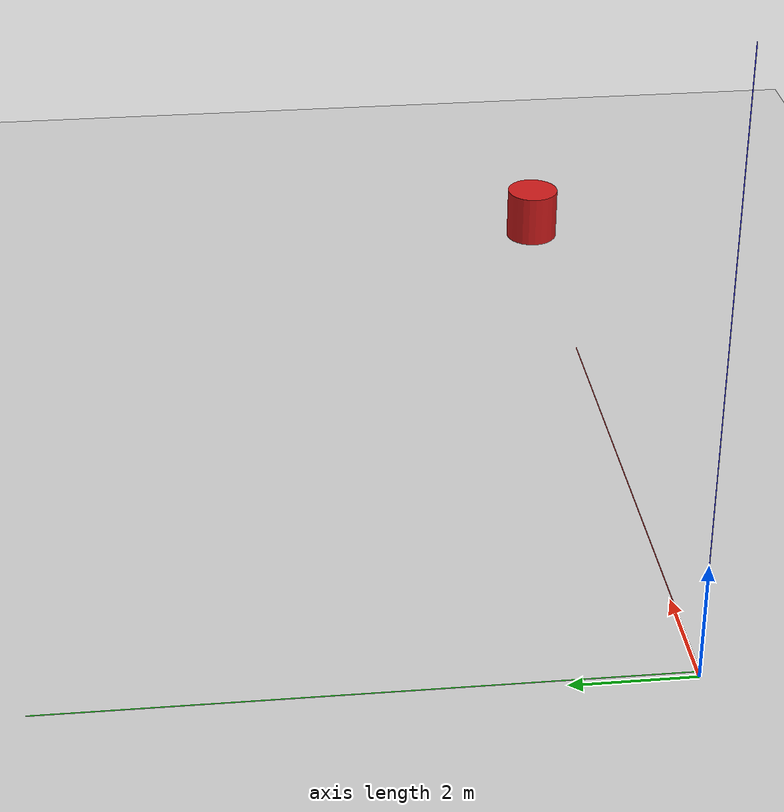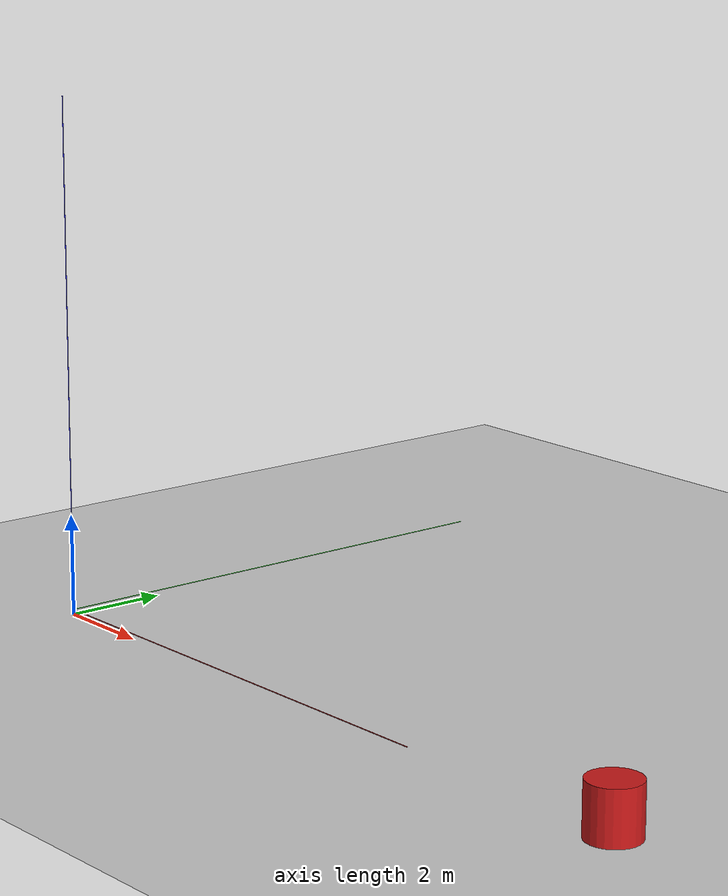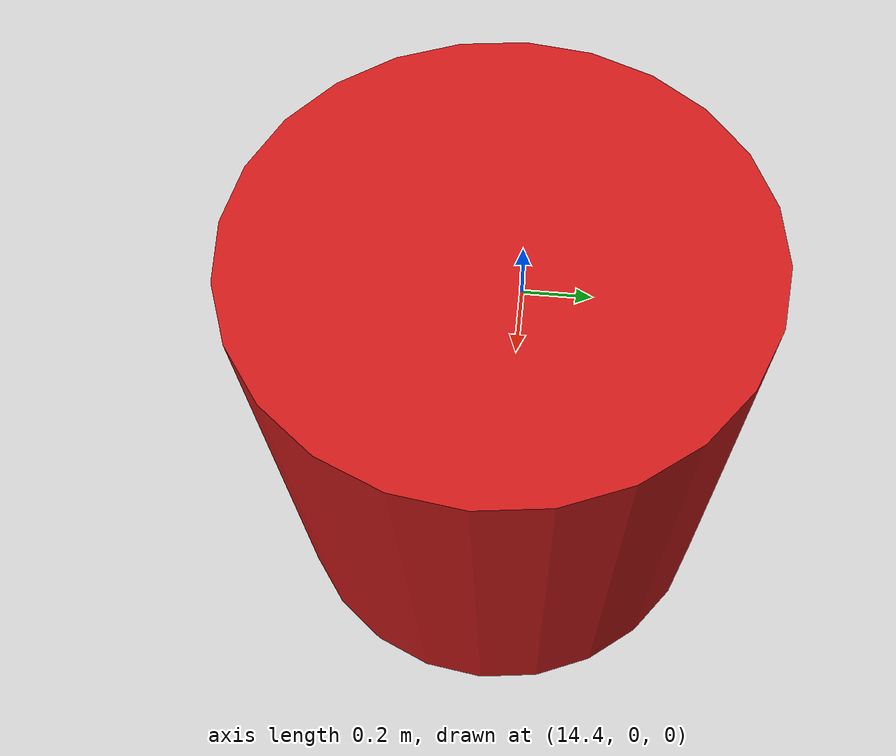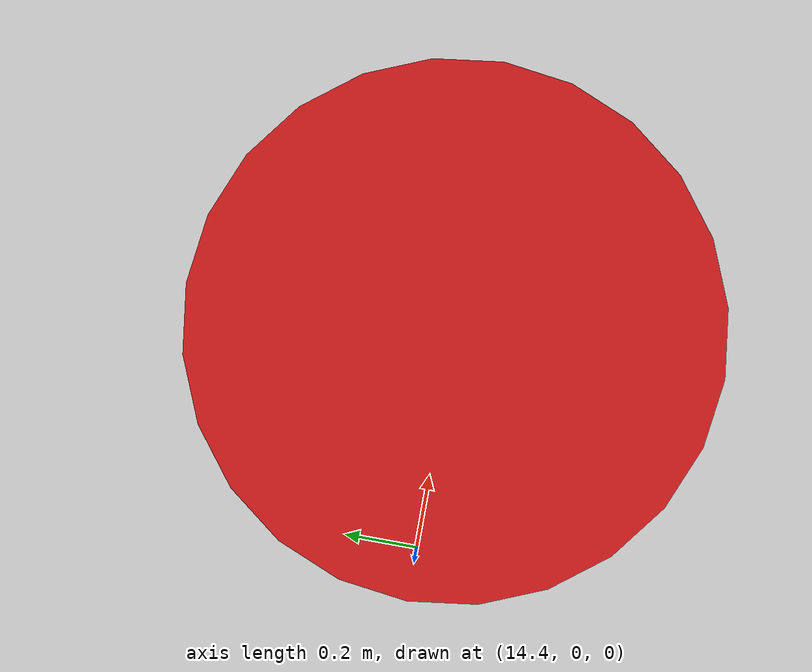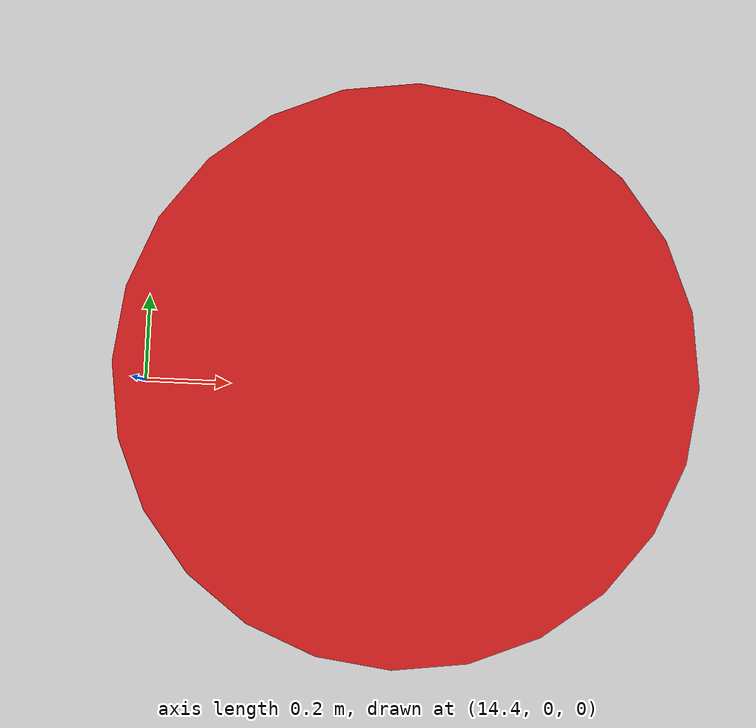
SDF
<sdf version="1.10">
 <world name="rf_runway">
  <physics name="1ms" type="ignore">
   <max_step_size>0.001</max_step_size>
   <real_time_factor>1.0</real_time_factor>
  </physics>
  <plugin filename="gz-sim-physics-system" name="gz::sim::systems::Physics"/>
  <plugin filename="gz-sim-scene-broadcaster-system" name="gz::sim::systems::SceneBroadcaster"/>
  <plugin filename="gz-sim-user-commands-system" name="gz::sim::systems::UserCommands"/>
  <plugin filename="gz-sim-sensors-system" name="gz::sim::systems::Sensors">
   <render_engine>ogre2</render_engine>
  </plugin>
  <plugin filename="gz-sim-imu-system" name="gz::sim::systems::Imu"/>
  <plugin filename="gz-sim-navsat-system" name="gz::sim::systems::NavSat"/>
  <light type="directional" name="sun">
   <pose>0 0 10 0 0 0</pose>
   <diffuse>0.8 0.8 0.8 1</diffuse>
   <specular>0.2 0.2 0.2 1</specular>
   <direction>-0.5 0.1 -0.9</direction>
  </light>
  <model name="axes">
   <static>1</static>
   <link name="link">
    <visual name="r">
     <cast_shadows>0</cast_shadows>
     <pose>5 0 0.1 0 0 0</pose>
     <geometry><box><size>10 0.01 0.01</size></box></geometry>
     <material>
      <ambient>1 0 0 0.8</ambient>
      <diffuse>1 0 0 0.8</diffuse>
      <emissive>1 0 0 0.8</emissive>
      <specular>0.5 0.5 0.5 0.8</specular>
     </material>
    </visual>
    <visual name="g">
     <cast_shadows>0</cast_shadows>
     <pose>0 5 0.1 0 0 0</pose>
     <geometry><box><size>0.01 10 0.01</size></box></geometry>
     <material>
      <ambient>0 1 0 0.8</ambient>
      <diffuse>0 1 0 0.8</diffuse>
      <emissive>0 1 0 0.8</emissive>
      <specular>0.5 0.5 0.5 0.8</specular>
     </material>
    </visual>
    <visual name="b">
     <cast_shadows>0</cast_shadows>
     <pose>0 0 5.1 0 0 0</pose>
     <geometry><box><size>0.01 0.01 10</size></box></geometry>
     <material>
      <ambient>0 0 1 0.8</ambient>
      <diffuse>0 0 1 0.8</diffuse>
      <emissive>0 0 1 0.8</emissive>
      <specular>0.5 0.5 0.5 0.8</specular>
     </material>
    </visual>
    <sensor name="navsat_sensor" type="navsat"><always_on>1</always_on><update_rate>1</update_rate></sensor>
   </link>
  </model>
  <model name="ground_plane">
   <static>true</static>
   <link name="link">
    <collision name="collision">
     <geometry><plane><normal>0 0 1</normal><size>500 500</size></plane></geometry>
    </collision>
    <visual name="visual">
     <geometry><plane><normal>0 0 1</normal><size>500 500</size></plane></geometry>
     <material><ambient>0.8 0.8 0.8 1</ambient><diffuse>0.8 0.8 0.8 1</diffuse></material>
    </visual>
   </link>
  </model>
  <model name="moving_cylinder">
   <pose>15 0 0.5 0 0 0</pose>
   <static>false</static>
   <link name="link">
    <inertial>
     <mass>10.0</mass>
     <inertia><ixx>0.208</ixx><iyy>0.208</iyy><izz>0.125</izz><ixy>0</ixy><ixz>0</ixz><iyz>0</iyz></inertia>
    </inertial>
    <collision name="collision">
     <geometry><cylinder><radius>0.5</radius><length>1.0</length></cylinder></geometry>
    </collision>
    <visual name="visual">
     <geometry><cylinder><radius>0.5</radius><length>1.0</length></cylinder></geometry>
     <material><ambient>0.8 0.1 0.1 1</ambient><diffuse>0.8 0.1 0.1 1</diffuse></material>
    </visual>
   </link>
   <plugin filename="gz-sim-trajectory-follower-system" name="gz::sim::systems::TrajectoryFollower">
    <link_name>link</link_name>
    <loop>true</loop>
    <tension>0.8</tension>
    <v>3.0</v>
    <w>1.0</w>
    <waypoints>
     <waypoint>15   0  0.5</waypoint>
     <waypoint>15  40  0.5</waypoint>
     <waypoint>-15 40  0.5</waypoint>
     <waypoint>-15  0  0.5</waypoint>
    </waypoints>
   </plugin>
  </model>
 </world>
</sdf>
